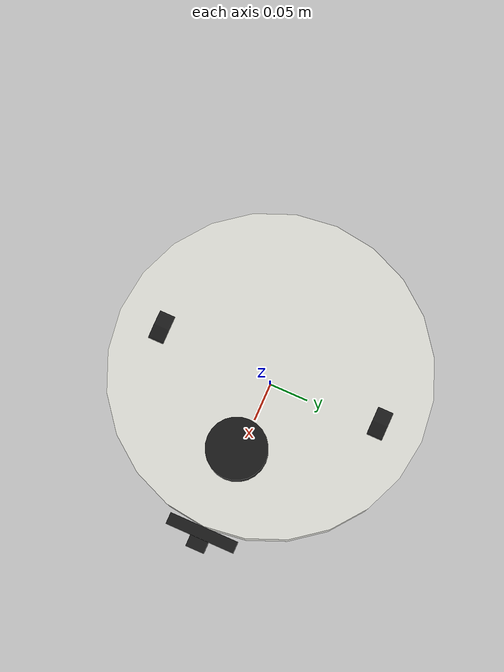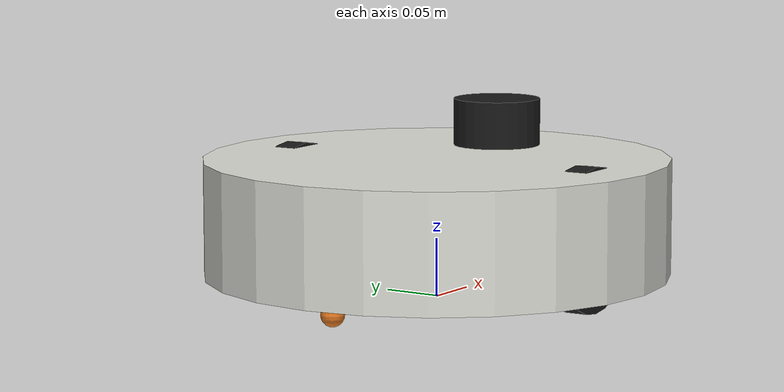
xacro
<?xml version="1.0"?>
<robot name="sweepi" xmlns:xacro="http://www.ros.org/wiki/xacro">

  <!-- Include robot base definition -->
  <xacro:include filename="robot_base.xacro"/>

  <!-- Include sensors (camera and lidar) -->
  <xacro:include filename="camera.xacro"/>
  <xacro:include filename="front_tof.xacro"/>
  <xacro:include filename="lidar.xacro"/>
  <xacro:include filename="imu.xacro"/>

  <!-- Include Gazebo base plugins and controller -->
  <xacro:include filename="robot_base_gazebo.xacro"/>

</robot>

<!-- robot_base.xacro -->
<robot xmlns:xacro="http://www.ros.org/wiki/xacro">

  <xacro:property name="body_radius"        value="0.200" />
  <xacro:property name="body_height"        value="0.100" />
  <xacro:property name="ground_clearance"   value="0.020" />

  <xacro:property name="drive_wheel_radius" value="0.0615" />
  <xacro:property name="drive_wheel_width"  value="0.020" />
  <xacro:property name="wheel_span"         value="0.290" />

  <xacro:property name="caster_offset_x"    value="0.160" />

  <xacro:property name="caster_radius"      value="${ground_clearance / 2.0}" />

  <xacro:property name="base_joint_z"
      value="${ground_clearance + body_height / 2.0}" />

  <xacro:property name="wheel_z_offset"
      value="${drive_wheel_radius - base_joint_z}" />

  <xacro:property name="caster_z_offset"
      value="${ground_clearance - caster_radius - base_joint_z}" />

  <material name="white_gray">
    <color rgba="0.88 0.88 0.85 1.0"/>
  </material>

  <material name="black">
    <color rgba="0.10 0.10 0.10 1.0"/>
  </material>

  <material name="orange">
    <color rgba="0.90 0.48 0.13 1.0"/>
  </material>

  <xacro:macro name="cylinder_inertia" params="m r l o_xyz o_rpy">
    <inertial>
      <mass value="${m}"/>
      <origin xyz="${o_xyz}" rpy="${o_rpy}"/>
      <inertia
        ixx="${m * (3 * r * r + l * l) / 12.0}" ixy="0" ixz="0"
        iyy="${m * (3 * r * r + l * l) / 12.0}" iyz="0"
        izz="${m * r * r / 2.0}"/>
    </inertial>
  </xacro:macro>

  <xacro:macro name="sphere_inertia" params="m r o_xyz o_rpy">
    <inertial>
      <mass value="${m}"/>
      <origin xyz="${o_xyz}" rpy="${o_rpy}"/>
      <inertia
        ixx="${2.0 * m * r * r / 5.0}" ixy="0" ixz="0"
        iyy="${2.0 * m * r * r / 5.0}" iyz="0"
        izz="${2.0 * m * r * r / 5.0}"/>
    </inertial>
  </xacro:macro>

  <xacro:macro name="body_inertia" params="m r h o_xyz o_rpy">
    <inertial>
      <mass value="${m}"/>
      <origin xyz="${o_xyz}" rpy="${o_rpy}"/>
      <inertia
        ixx="${m * (3 * r * r + h * h) / 12.0}" ixy="0" ixz="0"
        iyy="${m * (3 * r * r + h * h) / 12.0}" iyz="0"
        izz="${m * r * r / 2.0}"/>
    </inertial>
  </xacro:macro>

  <xacro:macro name="drive_wheel_link" params="prefix">
    <link name="${prefix}_wheel_link">
      <visual>
        <geometry>
          <cylinder radius="${drive_wheel_radius}" length="${drive_wheel_width}"/>
        </geometry>
        <origin xyz="0 0 0" rpy="${pi / 2.0} 0 0"/>
        <material name="black"/>
      </visual>
      <collision>
        <geometry>
          <cylinder radius="${drive_wheel_radius}" length="${drive_wheel_width}"/>
        </geometry>
        <origin xyz="0 0 0" rpy="${pi / 2.0} 0 0"/>
      </collision>
      <xacro:cylinder_inertia
        m="0.15"
        r="${drive_wheel_radius}"
        l="${drive_wheel_width}"
        o_xyz="0 0 0"
        o_rpy="${pi / 2.0} 0 0"/>
    </link>
  </xacro:macro>

  <xacro:drive_wheel_link prefix="left"/>
  <xacro:drive_wheel_link prefix="right"/>

  <xacro:macro name="caster_link" params="prefix">
    <link name="${prefix}_caster_link">
      <visual>
        <geometry>
          <sphere radius="${caster_radius}"/>
        </geometry>
        <origin xyz="0 0 0" rpy="0 0 0"/>
        <material name="orange"/>
      </visual>
      <collision>
        <geometry>
          <sphere radius="${caster_radius}"/>
        </geometry>
        <origin xyz="0 0 0" rpy="0 0 0"/>
      </collision>
      <xacro:sphere_inertia
        m="0.05"
        r="${caster_radius}"
        o_xyz="0 0 0"
        o_rpy="0 0 0"/>
    </link>
  </xacro:macro>

  <xacro:caster_link prefix="front"/>
  <xacro:caster_link prefix="rear"/>

  <link name="base_footprint"/>

  <link name="base_link">
    <visual>
      <geometry>
        <cylinder radius="${body_radius}" length="${body_height}"/>
      </geometry>
      <origin xyz="0 0 0" rpy="0 0 0"/>
      <material name="white_gray"/>
    </visual>
    <collision>
      <geometry>
        <cylinder radius="${body_radius}" length="${body_height}"/>
      </geometry>
      <origin xyz="0 0 0" rpy="0 0 0"/>
    </collision>
    <xacro:body_inertia
      m="3.0"
      r="${body_radius}"
      h="${body_height}"
      o_xyz="0 0 0"
      o_rpy="0 0 0"/>
  </link>

  <joint name="base_joint" type="fixed">
    <parent link="base_footprint"/>
    <child  link="base_link"/>
    <origin xyz="0 0 ${base_joint_z}" rpy="0 0 0"/>
  </joint>

  <!-- LEFT WHEEL JOINT - Axis should be Y (perpendicular to wheel width) -->
  <joint name="base_left_wheel_joint" type="continuous">
    <parent link="base_link"/>
    <child  link="left_wheel_link"/>
    <origin xyz="0 ${wheel_span / 2.0} ${wheel_z_offset}" rpy="0 0 0"/>
    <axis xyz="0 1 0"/>
    <dynamics damping="0.01" friction="0.01"/>
  </joint>

  <!-- RIGHT WHEEL JOINT - Axis should be Y (perpendicular to wheel width) -->
  <joint name="base_right_wheel_joint" type="continuous">
    <parent link="base_link"/>
    <child  link="right_wheel_link"/>
    <origin xyz="0 ${-(wheel_span / 2.0)} ${wheel_z_offset}" rpy="0 0 0"/>
    <axis xyz="0 1 0"/>
    <dynamics damping="0.01" friction="0.01"/>
  </joint>

  <joint name="base_front_caster_joint" type="fixed">
    <parent link="base_link"/>
    <child  link="front_caster_link"/>
    <origin xyz="${caster_offset_x} 0 ${caster_z_offset}" rpy="0 0 0"/>
  </joint>

  <joint name="base_rear_caster_joint" type="fixed">
    <parent link="base_link"/>
    <child  link="rear_caster_link"/>
    <origin xyz="${-caster_offset_x} 0 ${caster_z_offset}" rpy="0 0 0"/>
  </joint>

</robot>

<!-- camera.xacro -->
<robot xmlns:xacro="http://www.ros.org/wiki/xacro">

  <xacro:property name="camera_length" value="0.015" />
  <xacro:property name="camera_width"  value="0.090" />
  <xacro:property name="camera_height" value="0.025" />

  <xacro:macro name="box_inertia" params="m x y z o_xyz o_rpy">
    <inertial>
      <mass value="${m}"/>
      <origin xyz="${o_xyz}" rpy="${o_rpy}"/>
      <inertia
        ixx="${m * (y*y + z*z) / 12.0}" ixy="0" ixz="0"
        iyy="${m * (x*x + z*z) / 12.0}" iyz="0"
        izz="${m * (x*x + y*y) / 12.0}"/>
    </inertial>
  </xacro:macro>

  <link name="camera_link">
    <visual>
      <geometry>
        <box size="${camera_length} ${camera_width} ${camera_height}"/>
      </geometry>
      <origin xyz="0 0 0" rpy="0 0 0"/>
      <material name="black"/>
    </visual>
    <collision>
      <geometry>
        <box size="${camera_length} ${camera_width} ${camera_height}"/>
      </geometry>
      <origin xyz="0 0 0" rpy="0 0 0"/>
    </collision>
    <xacro:box_inertia m="0.05"
      x="${camera_length}" y="${camera_width}" z="${camera_height}"
      o_xyz="0 0 0" o_rpy="0 0 0"/>
  </link>

  <joint name="base_camera_joint" type="fixed">
    <parent link="base_link"/>
    <child  link="camera_link"/>
    <origin xyz="${body_radius + camera_length / 2.0} 0 0" rpy="0 0 0"/>
  </joint>

  <link name="camera_link_optical"/>

  <joint name="camera_optical_joint" type="fixed">
    <parent link="camera_link"/>
    <child  link="camera_link_optical"/>
    <origin xyz="0 0 0" rpy="${-pi/2} 0 ${-pi/2}"/>
  </joint>

  <gazebo reference="camera_link">
    <sensor name="camera" type="camera">
      <camera>
        <horizontal_fov>1.3962634</horizontal_fov>
        <image>
          <width>640</width>
          <height>480</height>
          <format>R8G8B8</format>
        </image>
        <clip>
          <near>0.1</near>
          <far>15.0</far>
        </clip>
        <noise>
          <type>gaussian</type>
          <mean>0.0</mean>
          <stddev>0.007</stddev>
        </noise>
        <optical_frame_id>camera_link_optical</optical_frame_id>
        <camera_info_topic>camera/camera_info</camera_info_topic>
      </camera>
      <always_on>1</always_on>
      <update_rate>20</update_rate>
      <visualize>true</visualize>
      <topic>camera/image_raw</topic>
    </sensor>
  </gazebo>

</robot>

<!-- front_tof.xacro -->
<robot xmlns:xacro="http://www.ros.org/wiki/xacro">

  <xacro:property name="front_tof_length" value="0.030"/>
  <xacro:property name="front_tof_width"  value="0.024"/>
  <xacro:property name="front_tof_height" value="0.020"/>

  <xacro:macro name="front_tof_box_inertia" params="m x y z o_xyz o_rpy">
    <inertial>
      <mass value="${m}"/>
      <origin xyz="${o_xyz}" rpy="${o_rpy}"/>
      <inertia
        ixx="${m * (y * y + z * z) / 12.0}" ixy="0" ixz="0"
        iyy="${m * (x * x + z * z) / 12.0}" iyz="0"
        izz="${m * (x * x + y * y) / 12.0}"/>
    </inertial>
  </xacro:macro>

  <link name="front_tof_link">
    <visual>
      <geometry>
        <box size="${front_tof_length} ${front_tof_width} ${front_tof_height}"/>
      </geometry>
      <origin xyz="0 0 0" rpy="0 0 0"/>
      <material name="black"/>
    </visual>
    <collision>
      <geometry>
        <box size="${front_tof_length} ${front_tof_width} ${front_tof_height}"/>
      </geometry>
      <origin xyz="0 0 0" rpy="0 0 0"/>
    </collision>
    <xacro:front_tof_box_inertia
      m="0.02"
      x="${front_tof_length}"
      y="${front_tof_width}"
      z="${front_tof_height}"
      o_xyz="0 0 0"
      o_rpy="0 0 0"/>
  </link>

  <joint name="base_front_tof_joint" type="fixed">
    <parent link="base_link"/>
    <child link="front_tof_link"/>
    <origin xyz="${body_radius + front_tof_length / 2.0} 0 0" rpy="0 0 0"/>
  </joint>

  <gazebo reference="front_tof_link">
    <sensor name="front_tof" type="gpu_lidar">
      <pose>0 0 0 0 0 0</pose>
      <topic>/tof/front/scan</topic>
      <update_rate>20</update_rate>
      <lidar>
        <scan>
          <horizontal>
            <samples>1</samples>
            <resolution>1</resolution>
            <min_angle>0</min_angle>
            <max_angle>0</max_angle>
          </horizontal>
          <vertical>
            <samples>1</samples>
            <resolution>1</resolution>
            <min_angle>0</min_angle>
            <max_angle>0</max_angle>
          </vertical>
        </scan>
        <range>
          <min>0.02</min>
          <max>1.20</max>
          <resolution>0.001</resolution>
        </range>
        <noise>
          <type>gaussian</type>
          <mean>0.0</mean>
          <stddev>0.001</stddev>
        </noise>
      </lidar>
      <always_on>1</always_on>
      <visualize>0</visualize>
    </sensor>
  </gazebo>

</robot>

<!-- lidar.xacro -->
<robot xmlns:xacro="http://www.ros.org/wiki/xacro">

  <xacro:property name="lidar_radius"  value="0.038" />
  <xacro:property name="lidar_height"  value="0.041" />
  <xacro:property name="lidar_offset_x" value="0.100" />

  <xacro:macro name="cylinder_inertia_lidar" params="m r l o_xyz o_rpy">
    <inertial>
      <mass value="${m}"/>
      <origin xyz="${o_xyz}" rpy="${o_rpy}"/>
      <inertia
        ixx="${m * (3 * r * r + l * l) / 12.0}" ixy="0" ixz="0"
        iyy="${m * (3 * r * r + l * l) / 12.0}" iyz="0"
        izz="${m * r * r / 2.0}"/>
    </inertial>
  </xacro:macro>

  <link name="lidar_link">
    <visual>
      <geometry>
        <cylinder radius="${lidar_radius}" length="${lidar_height}"/>
      </geometry>
      <origin xyz="0 0 0" rpy="0 0 0"/>
      <material name="black"/>
    </visual>
    <collision>
      <geometry>
        <cylinder radius="${lidar_radius}" length="${lidar_height}"/>
      </geometry>
      <origin xyz="0 0 0" rpy="0 0 0"/>
    </collision>
    <xacro:cylinder_inertia_lidar m="0.17"
      r="${lidar_radius}" l="${lidar_height}"
      o_xyz="0 0 0" o_rpy="0 0 0"/>
  </link>

  <link name="lidar_link_optical"/>

  <joint name="base_lidar_joint" type="fixed">
    <parent link="base_link"/>
    <child  link="lidar_link"/>
    <origin xyz="${lidar_offset_x} 0 ${body_height / 2.0 + lidar_height / 2.0}" rpy="0 0 0"/>
  </joint>

  <joint name="lidar_optical_joint" type="fixed">
    <parent link="lidar_link"/>
    <child  link="lidar_link_optical"/>
    <origin xyz="0 0 0" rpy="0 0 0"/>
  </joint>

 <!-- GAZEBO LIDAR SENSOR WITH ROS2 PLUGIN -->

 <plugin filename="gz-sim-sensors-system"
          name="gz::sim::systems::Sensors">
      <render_engine>ogre2</render_engine>
    </plugin>

 <gazebo reference="lidar_link">
    <sensor name="gpu_lidar" type="gpu_lidar">
      <pose>0 0 0 0 0 0</pose>
      <topic>/scan</topic>
      <update_rate>10</update_rate>

      <lidar>
        <scan>
          <horizontal>
            <samples>720</samples>
            <resolution>1</resolution>
            <min_angle>-3.14</min_angle>
            <max_angle>3.14</max_angle>
          </horizontal>
        </scan>
        <range>
          <min>0.10</min>
          <max>12.0</max>
          <resolution>0.01</resolution>
        </range>
        <noise>
          <type>gaussian</type>
          <mean>0.0</mean>
          <stddev>0.001</stddev>
        </noise>
      </lidar>

      <always_on>1</always_on>
      <visualize>1</visualize>
    </sensor>
  </gazebo>

</robot>

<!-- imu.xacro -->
<robot xmlns:xacro="http://www.ros.org/wiki/xacro">

  <link name="imu_link"/>

  <joint name="base_imu_joint" type="fixed">
    <parent link="base_link"/>
    <child link="imu_link"/>
    <!-- place it somewhere inside the body -->
    <origin xyz="0 0 0.05" rpy="0 0 0"/>
  </joint>

  <gazebo reference="imu_link">
    <sensor name="imu_sensor" type="imu">
      <pose>0 0 0 0 0 0</pose>
      <always_on>1</always_on>
      <update_rate>100</update_rate>
      <visualize>false</visualize>

      <!-- This is the Gazebo transport topic -->
      <topic>/imu</topic>

      <imu>
        <angular_velocity>
          <x><noise type="gaussian"><mean>0</mean><stddev>0.0002</stddev></noise></x>
          <y><noise type="gaussian"><mean>0</mean><stddev>0.0002</stddev></noise></y>
          <z><noise type="gaussian"><mean>0</mean><stddev>0.0002</stddev></noise></z>
        </angular_velocity>
        <linear_acceleration>
          <x><noise type="gaussian"><mean>0</mean><stddev>0.01</stddev></noise></x>
          <y><noise type="gaussian"><mean>0</mean><stddev>0.01</stddev></noise></y>
          <z><noise type="gaussian"><mean>0</mean><stddev>0.01</stddev></noise></z>
        </linear_acceleration>
      </imu>
    </sensor>
  </gazebo>

</robot>
